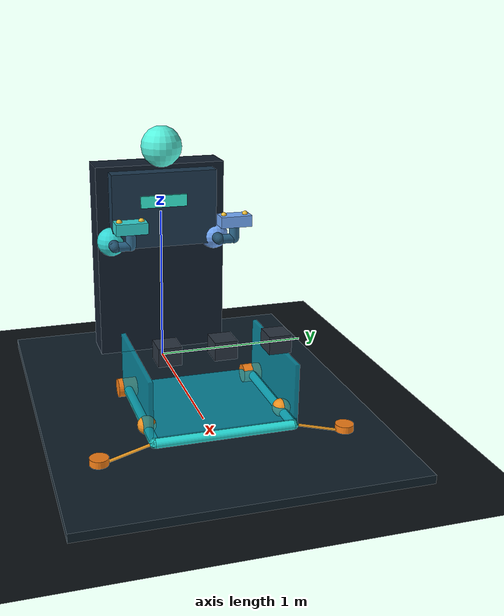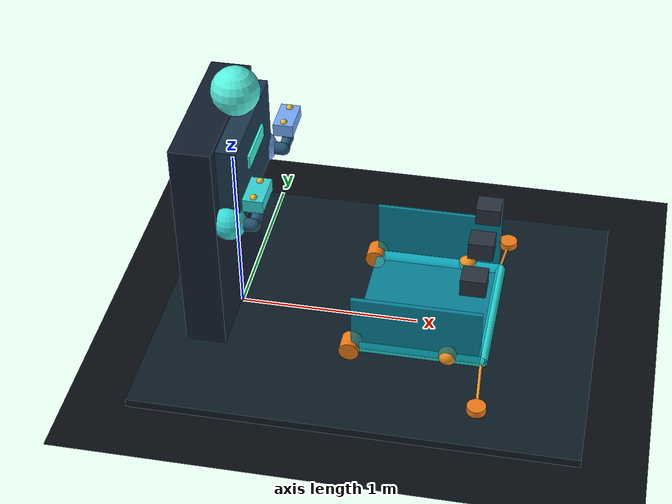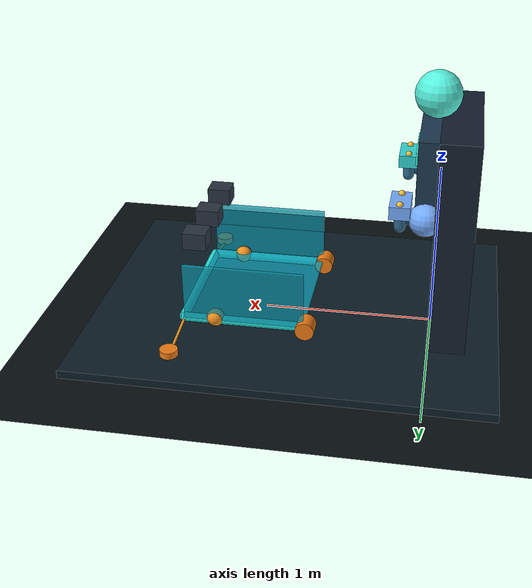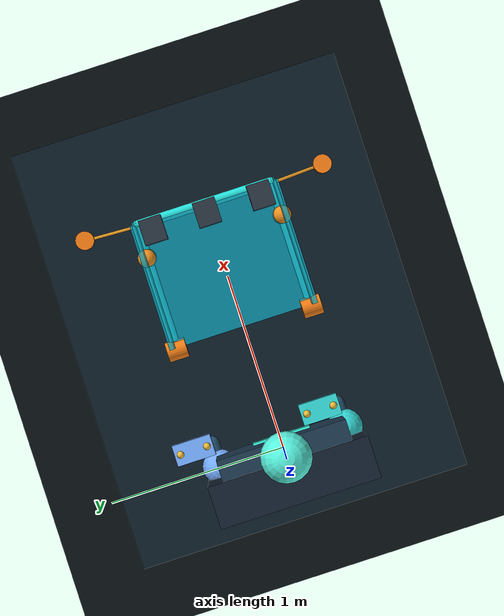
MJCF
<mujoco model="aurora_frame_emergency_shelter">
  <compiler angle="radian" autolimits="true"/>
  <option timestep="0.004" gravity="0 0 -9.81" integrator="implicitfast" cone="elliptic" jacobian="sparse"/>
  <size njmax="4000" nconmax="1000"/>
  <default>
    <joint damping="1.2" armature="0.01"/>
    <geom condim="4" friction="1.1 0.06 0.02" solref=".012 1" solimp=".96 .99 .003"/>
    <position kp="980" forcerange="-245 245"/>
  </default>
  <visual>
    <global offwidth="960" offheight="600" azimuth="135" elevation="-19"/>
    <headlight diffuse="0.58 .72 .84" ambient=".12 .15 .20" specular=".85 .85 .95"/>
    <rgba haze=".03 .05 .10 1"/>
  </visual>
  <asset>
    <texture name="sky" type="skybox" builtin="gradient" rgb1="0.010 0.018 0.045" rgb2="0.10 0.22 0.32" width="512" height="3072"/>
    <texture name="ground" type="2d" builtin="checker" rgb1=".025 .040 .060" rgb2=".042 .070 .085" width="512" height="512"/>
    <material name="ground_mat" texture="ground" texrepeat="8 8" reflectance=".18"/>
    <material name="frame_mat" rgba=".15 .88 .86 1" specular=".75" shininess=".8"/>
    <material name="canopy_mat" rgba=".07 .68 .78 .78" specular=".85" shininess=".85"/>
    <material name="anchor_mat" rgba=".95 .49 .08 1" specular=".45"/>
  </asset>
  <worldbody>
    <light name="key" pos="0.5 -1.4 2.7" dir="0.08 .35 -1" diffuse=".62 .82 1" specular=".7 .8 1"/>
    <light name="amber_rim" pos="1.55 1.2 1.6" dir="-.55 -.45 -.45" diffuse="1 .43 .12"/>
    <geom name="floor" type="plane" size="0 0 .1" material="ground_mat"/>
    <geom name="stage_edge" type="box" pos=".80 0 .025" size="1.20 .94 .025" rgba=".05 .11 .15 1" contype="0" conaffinity="0"/>
    <geom name="response_console" type="box" pos="-.10 0 .64" size=".11 .42 .67" rgba=".07 .12 .18 1" contype="0" conaffinity="0"/>
    <geom name="responder_chest" type="box" pos=".02 0 1.04" size=".10 .34 .24" rgba=".11 .22 .31 1" contype="0" conaffinity="0"/>
    <geom name="chest_status" type="box" pos=".132 -.01 1.10" size=".006 .15 .038" rgba=".22 .98 .87 1" contype="0" conaffinity="0"/>
    <geom type="sphere" pos=".04 0 1.43" size=".13" rgba=".34 .96 .88 1" contype="0" conaffinity="0"/>

    <body name="left_shoulder" pos="0.06 -0.340 0.84">
      <geom type="sphere" size="0.092" rgba=".20 .85 .84 1" contype="0" conaffinity="0"/>
      <body name="left_x_carriage">
        <joint name="left_arm_x" type="slide" axis="1 0 0" range="0 1.24" damping="8"/>
        <geom type="capsule" fromto="0 0 0 0.13 0 0" size="0.035" rgba="0.14 0.32 0.43 1" contype="0" conaffinity="0"/>
        <body name="left_y_carriage" pos="0.13 0 0">
          <joint name="left_arm_y" type="slide" axis="0 1 0" range="-0.44 0.44" damping="8"/>
          <geom type="capsule" fromto="0 0 0 0 0.10 0" size="0.030" rgba="0.16 0.38 0.52 1" contype="0" conaffinity="0"/>
          <body name="left_z_carriage" pos="0 0.10 0">
            <joint name="left_arm_z" type="slide" axis="0 0 1" range="-0.72 0.48" damping="10"/>
            <geom type="capsule" fromto="0 0 0 0 0 0.12" size="0.032" rgba="0.19 0.42 0.56 1" contype="0" conaffinity="0"/>
            <body name="left_palm" pos="0 0 0.12">
              <geom name="left_palm_geom" type="box" size="0.055 0.102 0.036" rgba=".20 .85 .84 1" friction="1.8 0.08 0.02"/>
              <geom type="sphere" pos="0 0.071 0.037" size="0.019" rgba="0.95 0.75 0.22 1" friction="2.2 0.09 0.03"/>
              <geom type="sphere" pos="0 -0.071 0.037" size="0.019" rgba="0.95 0.75 0.22 1" friction="2.2 0.09 0.03"/>
              <site name="left_palm_site" type="sphere" size="0.014" rgba="0.25 1 0.95 .5"/>
            </body>
          </body>
        </body>
      </body>
    </body>

    <body name="right_shoulder" pos="0.06 0.340 0.84">
      <geom type="sphere" size="0.092" rgba=".46 .68 1 1" contype="0" conaffinity="0"/>
      <body name="right_x_carriage">
        <joint name="right_arm_x" type="slide" axis="1 0 0" range="0 1.24" damping="8"/>
        <geom type="capsule" fromto="0 0 0 0.13 0 0" size="0.035" rgba="0.14 0.32 0.43 1" contype="0" conaffinity="0"/>
        <body name="right_y_carriage" pos="0.13 0 0">
          <joint name="right_arm_y" type="slide" axis="0 1 0" range="-0.44 0.44" damping="8"/>
          <geom type="capsule" fromto="0 0 0 0 0.10 0" size="0.030" rgba="0.16 0.38 0.52 1" contype="0" conaffinity="0"/>
          <body name="right_z_carriage" pos="0 0.10 0">
            <joint name="right_arm_z" type="slide" axis="0 0 1" range="-0.72 0.48" damping="10"/>
            <geom type="capsule" fromto="0 0 0 0 0 0.12" size="0.032" rgba="0.19 0.42 0.56 1" contype="0" conaffinity="0"/>
            <body name="right_palm" pos="0 0 0.12">
              <geom name="right_palm_geom" type="box" size="0.055 0.102 0.036" rgba=".46 .68 1 1" friction="1.8 0.08 0.02"/>
              <geom type="sphere" pos="0 0.071 0.037" size="0.019" rgba="0.95 0.75 0.22 1" friction="2.2 0.09 0.03"/>
              <geom type="sphere" pos="0 -0.071 0.037" size="0.019" rgba="0.95 0.75 0.22 1" friction="2.2 0.09 0.03"/>
              <site name="right_palm_site" type="sphere" size="0.014" rgba="0.25 1 0.95 .5"/>
            </body>
          </body>
        </body>
      </body>
    </body>

    <!-- Passive shelter: a spring deploys it; contacts and tendons govern stability. -->
    <body name="shelter_frame" pos=".70 0 .12">
      <joint name="frame_pitch" type="hinge" axis="0 -1 0" limited="true" range=".04 1.24" damping="25" frictionloss=".45" stiffness="1000" springref="1.035"/>
      <geom name="left_base_pivot" type="cylinder" pos="0 -.39 0" size=".055 .055" euler="1.5708 0 0" material="anchor_mat"/>
      <geom name="right_base_pivot" type="cylinder" pos="0 .39 0" size=".055 .055" euler="1.5708 0 0" material="anchor_mat"/>
      <geom name="frame_left_rail" type="capsule" fromto="0 -.39 0 .72 -.39 0" size=".027" material="frame_mat"/>
      <geom name="frame_right_rail" type="capsule" fromto="0 .39 0 .72 .39 0" size=".027" material="frame_mat"/>
      <geom name="frame_ridge" type="capsule" fromto=".72 -.39 0 .72 .39 0" size=".027" material="frame_mat"/>
      <geom name="storm_canopy" type="box" pos=".36 0 .018" size=".35 .41 .014" material="canopy_mat" contype="0" conaffinity="0"/>
      <geom name="left_canopy_wall" type="box" pos=".36 -.405 .18" size=".35 .012 .17" material="canopy_mat" mass=".001" contype="0" conaffinity="0"/>
      <geom name="right_canopy_wall" type="box" pos=".36 .405 .18" size=".35 .012 .17" material="canopy_mat" mass=".001" contype="0" conaffinity="0"/>
      <geom name="left_handle" type="sphere" pos=".53 -.39 .014" size=".052" rgba=".94 .57 .12 1" friction="2.0 .10 .03"/>
      <geom name="right_handle" type="sphere" pos=".53 .39 .014" size=".052" rgba=".94 .57 .12 1" friction="2.0 .10 .03"/>
      <site name="frame_center_site" type="sphere" pos=".47 0 .018" size=".012" rgba=".2 1 .9 .65"/>
      <site name="left_handle_site" type="sphere" pos=".53 -.39 .014" size=".020" rgba="1 .72 .2 .6"/>
      <site name="right_handle_site" type="sphere" pos=".53 .39 .014" size=".020" rgba="1 .72 .2 .6"/>
      <site name="left_guy_site" type="sphere" pos=".71 -.34 .012" size=".011" rgba=".3 .95 1 .5"/>
      <site name="right_guy_site" type="sphere" pos=".71 .34 .012" size=".011" rgba=".3 .95 1 .5"/>
    </body>

    <body name="left_anchor" pos="1.43 -.69 .045">
      <geom name="left_anchor_geom" type="cylinder" size=".052 .045" material="anchor_mat"/>
      <site name="left_anchor_site" type="sphere" size=".012" rgba="1 .55 .1 .65"/>
    </body>
    <body name="right_anchor" pos="1.43 .69 .045">
      <geom name="right_anchor_geom" type="cylinder" size=".052 .045" material="anchor_mat"/>
      <site name="right_anchor_site" type="sphere" size=".012" rgba="1 .55 .1 .65"/>
    </body>

    <body name="latch_1_housing" pos="1.345 -0.300 0.60">
      <geom name="latch_1_housing_geom" type="box" size="0.068 0.062 0.050" rgba="0.16 0.20 0.25 1" contype="0" conaffinity="0"/>
      <body name="latch_1_bolt" pos="0 0 -0.025">
        <joint name="latch_1_travel" type="slide" axis="0 0 -1" limited="true" range="0 0.052" damping="8" frictionloss="4.0" stiffness="82" springref="0"/>
        <geom name="latch_1_button" type="box" size="0.046 0.046 0.020" rgba="0.98 0.55 0.09 1" friction="1.9 0.08 0.02"/>
        <site name="latch_1_site" type="sphere" size="0.012" rgba="1 0.73 0.18 .7"/>
      </body>
    </body>

    <body name="latch_2_housing" pos="1.345 0.000 0.60">
      <geom name="latch_2_housing_geom" type="box" size="0.068 0.062 0.050" rgba="0.16 0.20 0.25 1" contype="0" conaffinity="0"/>
      <body name="latch_2_bolt" pos="0 0 -0.025">
        <joint name="latch_2_travel" type="slide" axis="0 0 -1" limited="true" range="0 0.052" damping="8" frictionloss="4.0" stiffness="82" springref="0"/>
        <geom name="latch_2_button" type="box" size="0.046 0.046 0.020" rgba="0.98 0.55 0.09 1" friction="1.9 0.08 0.02"/>
        <site name="latch_2_site" type="sphere" size="0.012" rgba="1 0.73 0.18 .7"/>
      </body>
    </body>

    <body name="latch_3_housing" pos="1.345 0.300 0.60">
      <geom name="latch_3_housing_geom" type="box" size="0.068 0.062 0.050" rgba="0.16 0.20 0.25 1" contype="0" conaffinity="0"/>
      <body name="latch_3_bolt" pos="0 0 -0.025">
        <joint name="latch_3_travel" type="slide" axis="0 0 -1" limited="true" range="0 0.052" damping="8" frictionloss="4.0" stiffness="82" springref="0"/>
        <geom name="latch_3_button" type="box" size="0.046 0.046 0.020" rgba="0.98 0.55 0.09 1" friction="1.9 0.08 0.02"/>
        <site name="latch_3_site" type="sphere" size="0.012" rgba="1 0.73 0.18 .7"/>
      </body>
    </body>
    <camera name="hero" pos="2.52 -2.58 1.62" xyaxes=".70 .70 0 -.27 .27 .925"/>
    <camera name="proof" pos="1.68 -1.25 .92" xyaxes=".69 .72 0 -.32 .30 .90"/>
  </worldbody>
  <tendon>
    <spatial name="left_guyline" width=".008" rgba=".96 .63 .13 1" stiffness="290" damping="7" springlength="0.58">
      <site site="left_guy_site"/><site site="left_anchor_site"/>
    </spatial>
    <spatial name="right_guyline" width=".008" rgba=".96 .63 .13 1" stiffness="290" damping="7" springlength="0.58">
      <site site="right_guy_site"/><site site="right_anchor_site"/>
    </spatial>
  </tendon>
  <actuator>
    <position name="left_arm_x_position" joint="left_arm_x"/>
    <position name="left_arm_y_position" joint="left_arm_y"/>
    <position name="left_arm_z_position" joint="left_arm_z"/>
    <position name="right_arm_x_position" joint="right_arm_x"/>
    <position name="right_arm_y_position" joint="right_arm_y"/>
    <position name="right_arm_z_position" joint="right_arm_z"/>
  </actuator>
  <sensor>
    <jointpos name="frame_pitch_sensor" joint="frame_pitch"/>
    <jointvel name="frame_pitch_velocity" joint="frame_pitch"/>
    <framepos name="frame_center_position" objtype="site" objname="frame_center_site"/>
    <framepos name="left_handle_position" objtype="site" objname="left_handle_site"/>
    <framepos name="right_handle_position" objtype="site" objname="right_handle_site"/>
    <framepos name="left_palm_position" objtype="site" objname="left_palm_site"/>
    <framepos name="right_palm_position" objtype="site" objname="right_palm_site"/>
    <tendonpos name="left_guyline_length" tendon="left_guyline"/>
    <tendonpos name="right_guyline_length" tendon="right_guyline"/>
    <jointpos name="latch_1_sensor" joint="latch_1_travel"/>
    <jointpos name="latch_2_sensor" joint="latch_2_travel"/>
    <jointpos name="latch_3_sensor" joint="latch_3_travel"/>
  </sensor>
</mujoco>
